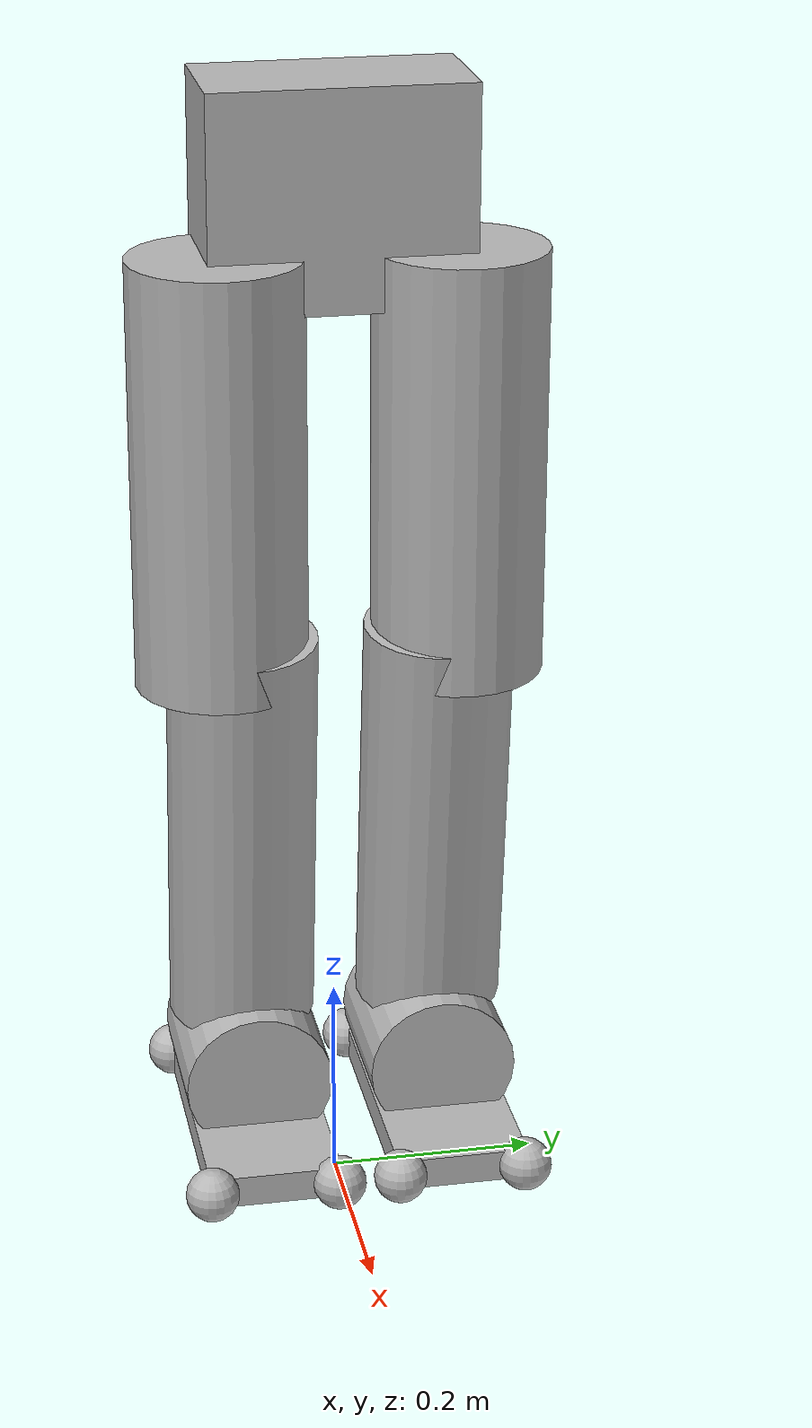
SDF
<?xml version="1.0" ?>
<sdf version='1.5'>
  <model name='ROBOT'>
  <plugin name="PacerPlugin" filename="/usr/local/lib/libPacerGazeboPlugin.so"/>
  <pose>0 0 1 0 -0 0</pose>
    <link name='BODY0'>
      <pose>0 0 0 0 -0 0</pose>
      <inertial>
        <mass>14.2529</mass>
        <inertia>
          <ixx>0.1</ixx>
          <ixy>0.0</ixy>
          <ixz>-0.0</ixz>
          <iyy>0.1</iyy>
          <iyz>-0.0</iyz>
          <izz>0.1</izz>
        </inertia>
      </inertial>
      <visual name='BODY0_visual'>
        <geometry>
          <box>
            <size>0.12 0.24 0.20</size>
          </box>
        </geometry>
      </visual>
      <velocity_decay>
        <linear>0</linear>
        <angular>0</angular>
      </velocity_decay>
    </link>
    <link name='l_uglut'>
      <pose>0 0.089 0 0 -0 0</pose>
      <inertial>
        <pose>0 0 0 0 0 0</pose>
        <mass>0.5166</mass>
        <inertia>
          <ixx>0.01</ixx>
          <ixy>0.0</ixy>
          <ixz>-0.0</ixz>
          <iyy>0.01</iyy>
          <iyz>-0.0</iyz>
          <izz>0.01</izz>
        </inertia>
      </inertial>
      <visual name='l_uglut_visual'>
        <pose>0 0 0 0 1.57079 0</pose>
        <geometry>
          <cylinder>
            <length>0.078396</length>
            <radius>0.019096</radius>
          </cylinder>
        </geometry>
      </visual>
      <velocity_decay>
        <linear>0</linear>
        <angular>0</angular>
      </velocity_decay>
    </link>
    <joint name='l_leg_uhz1' type='revolute'>
      <child>l_uglut</child>
      <parent>BODY0</parent>
      <axis>
        <xyz>0 0 1</xyz>
        <limit>
          <lower>-1e+16</lower>
          <upper>1e+16</upper>
        </limit>
        <dynamics/>
        <use_parent_model_frame>1</use_parent_model_frame>
      </axis>
    </joint>
    <link name='l_lglut'>
      <pose>0 0.089 0 0 -0 0</pose>
      <inertial>
        <pose>0 0 0 0 0 0</pose>
        <mass>0.69</mass>
        <inertia>
          <ixx>0.01</ixx>
          <ixy>0.0</ixy>
          <ixz>-0.0</ixz>
          <iyy>0.01</iyy>
          <iyz>-0.0</iyz>
          <izz>0.01</izz>
        </inertia>
      </inertial>
      <visual name='l_lglut_visual'>
        <pose>0 0 0 0 0 0</pose>
        <geometry>
          <cylinder>
            <length>0.060306</length>
            <radius>0.0200969</radius>
          </cylinder>
        </geometry>
      </visual>
      <velocity_decay>
        <linear>0</linear>
        <angular>0</angular>
      </velocity_decay>
    </link>
    <joint name='l_leg_mhx2' type='revolute'>
      <child>l_lglut</child>
      <parent>l_uglut</parent>
      <axis>
        <xyz>1 0 0</xyz>
        <limit>
          <lower>-1e+16</lower>
          <upper>1e+16</upper>
        </limit>
        <dynamics/>
        <use_parent_model_frame>1</use_parent_model_frame>
      </axis>
    </joint>
    <link name='l_uleg'>
      <pose>0.05 0.089 -0.05 0 -0 0</pose>
      <inertial>
        <pose>0 0 -0.21 0 -0 0</pose>
        <mass>7.34</mass>
        <inertia>
          <ixx>0.01</ixx>
          <ixy>0.0</ixy>
          <ixz>-0.0</ixz>
          <iyy>0.01</iyy>
          <iyz>-0.0</iyz>
          <izz>0.01</izz>
        </inertia>
      </inertial>
      <visual name='l_uleg_visual'>
        <pose>-0.0179 0.02085 -0.2 0 -0 0</pose>
        <geometry>
          <cylinder>
            <length>0.4</length>
            <radius>0.08</radius>
          </cylinder>
        </geometry>
      </visual>
      <velocity_decay>
        <linear>0</linear>
        <angular>0</angular>
      </velocity_decay>
    </link>
    <joint name='l_leg_lhy3' type='revolute'>
      <child>l_uleg</child>
      <parent>l_lglut</parent>
      <axis>
        <xyz>0 1 0</xyz>
        <limit>
          <lower>-1e+16</lower>
          <upper>1e+16</upper>
        </limit>
        <dynamics/>
        <use_parent_model_frame>1</use_parent_model_frame>
      </axis>
    </joint>
    <link name='l_lleg'>
      <pose>0 0.089 -0.424 0 -0 0</pose>
      <inertial>
        <pose>0.001 0 -0.187 0 -0 0</pose>
        <mass>4.367</mass>
        <inertia>
          <ixx>0.01</ixx>
          <ixy>0.0</ixy>
          <ixz>-0.0</ixz>
          <iyy>0.01</iyy>
          <iyz>-0.0</iyz>
          <izz>0.01</izz>
        </inertia>
      </inertial>
      <visual name='l_lleg_visual'>
        <pose>0.02 0.00295 -0.18 0 0.1 0</pose>
        <geometry>
          <cylinder>
            <length>0.4</length>
            <radius>0.07</radius>
          </cylinder>
        </geometry>
      </visual>
      <velocity_decay>
        <linear>0</linear>
        <angular>0</angular>
      </velocity_decay>
    </link>
    <joint name='l_leg_kny4' type='revolute'>
      <child>l_lleg</child>
      <parent>l_uleg</parent>
      <axis>
        <xyz>0 1 0</xyz>
        <limit>
          <lower>-1e+16</lower>
          <upper>1e+16</upper>
        </limit>
        <dynamics/>
        <use_parent_model_frame>1</use_parent_model_frame>
      </axis>
    </joint>
    <link name='l_talus'>
      <pose>0 0.089 -0.846 0 -0 0</pose>
      <inertial>
        <pose>0 0 0 0 -0 0</pose>
        <mass>0.1</mass>
        <inertia>
          <ixx>0.01</ixx>
          <ixy>0.0</ixy>
          <ixz>-0.0</ixz>
          <iyy>0.01</iyy>
          <iyz>-0.0</iyz>
          <izz>0.01</izz>
        </inertia>
      </inertial>
      <visual name='l_talus_visual'>
        <pose>0.02 0 0 -2.65359e-06 1.57079 -2.65359e-06</pose>
        <geometry>
          <cylinder>
            <length>0.15</length>
            <radius>0.07</radius>
          </cylinder>
        </geometry>
      </visual>
      <velocity_decay>
        <linear>0</linear>
        <angular>0</angular>
      </velocity_decay>
    </link>
    <joint name='l_leg_uay5' type='revolute'>
      <child>l_talus</child>
      <parent>l_lleg</parent>
      <axis>
        <xyz>0 1 0</xyz>
        <limit>
          <lower>-1e+16</lower>
          <upper>1e+16</upper>
        </limit>
        <dynamics/>
        <use_parent_model_frame>1</use_parent_model_frame>
      </axis>
    </joint>
    <link name='l_foot'>
      <pose>0.01 0.089 -0.846 0 -0 0</pose>
      <inertial>
        <pose>0.027 0 -0.067 0 -0 0</pose>
        <mass>1.634</mass>
        <inertia>
          <ixx>0.01</ixx>
          <ixy>0.0</ixy>
          <ixz>-0.0</ixz>
          <iyy>0.01</iyy>
          <iyz>-0.0</iyz>
          <izz>0.01</izz>
        </inertia>
      </inertial>
      <collision name='l_foot_collision'>
        <pose>0.178 0.06 -0.056119 0 -0 0</pose>
        <geometry>
          <sphere>
            <radius>0.025</radius>
          </sphere>
        </geometry>
      </collision>
      <collision name='l_foot_collision'>
        <pose>0.178 -0.06 -0.056119 0 -0 0</pose>
        <geometry>
          <sphere>
            <radius>0.025</radius>
          </sphere>
        </geometry>
      </collision>
      <collision name='l_foot_collision'>
        <pose>-0.098 0.06 -0.056119 0 -0 0</pose>
        <geometry>
          <sphere>
            <radius>0.025</radius>
          </sphere>
        </geometry>
      </collision>
      <collision name='l_foot_collision'>
        <pose>-0.098 -0.06 -0.056119 0 -0 0</pose>
        <geometry>
          <sphere>
            <radius>0.025</radius>
          </sphere>
        </geometry>
      </collision>

      <visual name='l_foot_visual1'>
        <pose>0.048 0 -0.056119 0 -0 0</pose>
        <geometry>
          <box>
            <size>0.26 0.124887 0.03</size>
          </box>
        </geometry>
      </visual>
      <visual name='l_foot_visual2'>
        <pose>0.178 0.06 -0.056119 0 -0 0</pose>
        <geometry>
          <sphere>
            <radius>0.025</radius>
          </sphere>
        </geometry>
      </visual>
      <visual name='l_foot_visual3'>
        <pose>0.178 -0.06 -0.056119 0 -0 0</pose>
        <geometry>
          <sphere>
            <radius>0.025</radius>
          </sphere>
        </geometry>
      </visual>
      <visual name='l_foot_visual4'>
      <pose>-0.098 0.06 -0.056119 0 -0 0</pose>
        <geometry>
          <sphere>
            <radius>0.025</radius>
          </sphere>
        </geometry>
      </visual>
      <visual name='l_foot_visual5'>
      <pose>-0.098 -0.06 -0.056119 0 -0 0</pose>
        <geometry>
          <sphere>
            <radius>0.025</radius>
          </sphere>
        </geometry>
      </visual>

      <velocity_decay>
        <linear>0</linear>
        <angular>0</angular>
      </velocity_decay>

      <sensor name='l_foot_contact' type='contact'>
        <contact>
          <collision>l_foot_collision</collision>
        </contact>
        <update_rate>1000</update_rate>
      </sensor>
    </link>
    <joint name='l_leg_lax6' type='revolute'>
      <child>l_foot</child>
      <parent>l_talus</parent>
      <axis>
        <xyz>1 0 0</xyz>
        <limit>
          <lower>-1e+16</lower>
          <upper>1e+16</upper>
        </limit>
        <dynamics/>
        <use_parent_model_frame>1</use_parent_model_frame>
      </axis>
    </joint>
    <link name='r_uglut'>
      <pose>0 -0.089 0 0 -0 0</pose>
      <inertial>
      <pose>0 0 0 0 0 0</pose>
        <mass>0.5166</mass>
        <inertia>
          <ixx>0.01</ixx>
          <ixy>0.0</ixy>
          <ixz>-0.0</ixz>
          <iyy>0.01</iyy>
          <iyz>-0.0</iyz>
          <izz>0.01</izz>
        </inertia>
      </inertial>
      <visual name='r_uglut_visual'>
        <pose>0 0 0 0 1.57079 0</pose>
        <geometry>
          <cylinder>
            <length>0.078396</length>
            <radius>0.019096</radius>
          </cylinder>
        </geometry>
      </visual>
      <velocity_decay>
        <linear>0</linear>
        <angular>0</angular>
      </velocity_decay>
    </link>
    <joint name='r_leg_uhz1' type='revolute'>
      <child>r_uglut</child>
      <parent>BODY0</parent>
      <axis>
        <xyz>0 0 1</xyz>
        <limit>
          <lower>-1e+16</lower>
          <upper>1e+16</upper>
        </limit>
        <dynamics/>
        <use_parent_model_frame>1</use_parent_model_frame>
      </axis>
    </joint>
    <link name='r_lglut'>
      <pose>0 -0.089 0 0 -0 0</pose>
      <inertial>
      <pose>0 0 0 0 0 0</pose>
        <mass>0.69</mass>
        <inertia>
          <ixx>0.01</ixx>
          <ixy>0.0</ixy>
          <ixz>-0.0</ixz>
          <iyy>0.01</iyy>
          <iyz>-0.0</iyz>
          <izz>0.01</izz>
        </inertia>
      </inertial>
      <visual name='r_lglut_visual'>
      <pose>0 0 0 0 0 0</pose>
        <geometry>
          <cylinder>
            <length>0.060306</length>
            <radius>0.0200969</radius>
          </cylinder>
        </geometry>
      </visual>
      <velocity_decay>
        <linear>0</linear>
        <angular>0</angular>
      </velocity_decay>
    </link>
    <joint name='r_leg_mhx2' type='revolute'>
      <child>r_lglut</child>
      <parent>r_uglut</parent>
      <axis>
        <xyz>1 0 0</xyz>
        <limit>
          <lower>-1e+16</lower>
          <upper>1e+16</upper>
        </limit>
        <dynamics/>
        <use_parent_model_frame>1</use_parent_model_frame>
      </axis>
    </joint>
    <link name='r_uleg'>
      <pose>0.05 -0.089 -0.05 0 -0 0</pose>
      <inertial>
        <pose>0 0 -0.21 0 -0 0</pose>
        <mass>7.34</mass>
        <inertia>
          <ixx>0.01</ixx>
          <ixy>0.0</ixy>
          <ixz>-0.0</ixz>
          <iyy>0.01</iyy>
          <iyz>-0.0</iyz>
          <izz>0.01</izz>
        </inertia>
      </inertial>
      <visual name='r_uleg_visual'>
        <pose>-0.0179 -0.02085 -0.20 0 -0 0</pose>
        <geometry>
          <cylinder>
          <length>0.4</length>
          <radius>0.08</radius>
          </cylinder>
        </geometry>
      </visual>
      <velocity_decay>
        <linear>0</linear>
        <angular>0</angular>
      </velocity_decay>
    </link>
    <joint name='r_leg_lhy3' type='revolute'>
      <child>r_uleg</child>
      <parent>r_lglut</parent>
      <axis>
        <xyz>0 1 0</xyz>
        <limit>
          <lower>-1e+16</lower>
          <upper>1e+16</upper>
        </limit>
        <dynamics/>
        <use_parent_model_frame>1</use_parent_model_frame>
      </axis>
    </joint>
    <link name='r_lleg'>
      <pose>0 -0.089 -0.424 0 -0 0</pose>
      <inertial>
        <pose>0.001 0 -0.187 0 -0 0</pose>
        <mass>4.367</mass>
        <inertia>
          <ixx>0.01</ixx>
          <ixy>0.0</ixy>
          <ixz>-0.0</ixz>
          <iyy>0.01</iyy>
          <iyz>-0.0</iyz>
          <izz>0.01</izz>
        </inertia>
      </inertial>
      <visual name='r_lleg_visual'>
        <pose>0.02 -0.00295 -0.18 0 0.1 0</pose>
        <geometry>
          <cylinder>
            <length>0.4</length>
            <radius>0.07</radius>
          </cylinder>
        </geometry>
      </visual>
      <velocity_decay>
        <linear>0</linear>
        <angular>0</angular>
      </velocity_decay>
    </link>
    <joint name='r_leg_kny4' type='revolute'>
      <child>r_lleg</child>
      <parent>r_uleg</parent>
      <axis>
        <xyz>0 1 0</xyz>
        <limit>
          <lower>-1e+16</lower>
          <upper>1e+16</upper>
        </limit>
        <dynamics/>
        <use_parent_model_frame>1</use_parent_model_frame>
      </axis>
    </joint>
    <link name='r_talus'>
      <pose>0 -0.089 -0.846 0 -0 0</pose>
      <inertial>
        <pose>0 0 0 0 -0 0</pose>
        <mass>0.1</mass>
        <inertia>
          <ixx>0.01</ixx>
          <ixy>0.0</ixy>
          <ixz>-0.0</ixz>
          <iyy>0.01</iyy>
          <iyz>-0.0</iyz>
          <izz>0.01</izz>
        </inertia>
      </inertial>
      <visual name='r_talus_visual'>
        <pose>0.02 0 0 -2.65359e-06 1.57079 -2.65359e-06</pose>
        <geometry>
          <cylinder>
            <length>0.15</length>
            <radius>0.07</radius>
          </cylinder>
        </geometry>
      </visual>
      <velocity_decay>
        <linear>0</linear>
        <angular>0</angular>
      </velocity_decay>
    </link>
    <joint name='r_leg_uay5' type='revolute'>
      <child>r_talus</child>
      <parent>r_lleg</parent>
      <axis>
        <xyz>0 1 0</xyz>
        <limit>
          <lower>-1e+16</lower>
          <upper>1e+16</upper>
        </limit>
        <dynamics/>
        <use_parent_model_frame>1</use_parent_model_frame>
      </axis>
    </joint>
    <link name='r_foot'>
      <pose>0.01 -0.089 -0.846 0 -0 0</pose>
      <inertial>
        <pose>0.027 0 -0.067 0 -0 0</pose>
        <mass>1.634</mass>
        <inertia>
          <ixx>0.01</ixx>
          <ixy>0.0</ixy>
          <ixz>-0.0</ixz>
          <iyy>0.01</iyy>
          <iyz>-0.0</iyz>
          <izz>0.01</izz>
        </inertia>
      </inertial>

      <collision name='r_foot_collision'>
        <pose>0.178 0.06 -0.056119 0 -0 0</pose>
        <geometry>
          <sphere>
            <radius>0.025</radius>
          </sphere>
        </geometry>
      </collision>
      <collision name='r_foot_collision'>
        <pose>0.178 -0.06 -0.056119 0 -0 0</pose>
        <geometry>
          <sphere>
            <radius>0.025</radius>
          </sphere>
        </geometry>
      </collision>
      <collision name='r_foot_collision'>
        <pose>-0.098 0.06 -0.056119 0 -0 0</pose>
        <geometry>
          <sphere>
            <radius>0.025</radius>
          </sphere>
        </geometry>
      </collision>
      <collision name='r_foot_collision'>
        <pose>-0.098 -0.06 -0.056119 0 -0 0</pose>
        <geometry>
          <sphere>
            <radius>0.025</radius>
          </sphere>
        </geometry>
      </collision>

      <visual name='r_foot_visual1'>
        <pose>0.048 0 -0.056119 0 -0 0</pose>
        <geometry>
          <box>
            <size>0.26 0.124887 0.03</size>
          </box>
        </geometry>
      </visual>
      <visual name='r_foot_visual2'>
        <pose>0.178 0.06 -0.056119 0 -0 0</pose>
        <geometry>
          <sphere>
            <radius>0.025</radius>
          </sphere>
        </geometry>
      </visual>
      <visual name='r_foot_visual3'>
        <pose>0.178 -0.06 -0.056119 0 -0 0</pose>
        <geometry>
          <sphere>
            <radius>0.025</radius>
          </sphere>
        </geometry>
      </visual>
      <visual name='r_foot_visual4'>
      <pose>-0.098 0.06 -0.056119 0 -0 0</pose>
        <geometry>
          <sphere>
            <radius>0.025</radius>
          </sphere>
        </geometry>
      </visual>
      <visual name='r_foot_visual5'>
      <pose>-0.098 -0.06 -0.056119 0 -0 0</pose>
        <geometry>
          <sphere>
            <radius>0.025</radius>
          </sphere>
        </geometry>
      </visual>

      <velocity_decay>
        <linear>0</linear>
        <angular>0</angular>
      </velocity_decay>

      <sensor name='r_foot_contact' type='contact'>
        <contact>
          <collision>r_foot_collision</collision>
        </contact>
        <update_rate>1000</update_rate>
      </sensor>
    </link>
    <joint name='r_leg_lax6' type='revolute'>
      <child>r_foot</child>
      <parent>r_talus</parent>
      <axis>
        <xyz>1 0 0</xyz>
        <limit>
          <lower>-1e+16</lower>
          <upper>1e+16</upper>
        </limit>
        <dynamics/>
        <use_parent_model_frame>1</use_parent_model_frame>
      </axis>
    </joint>
  </model>
</sdf>
